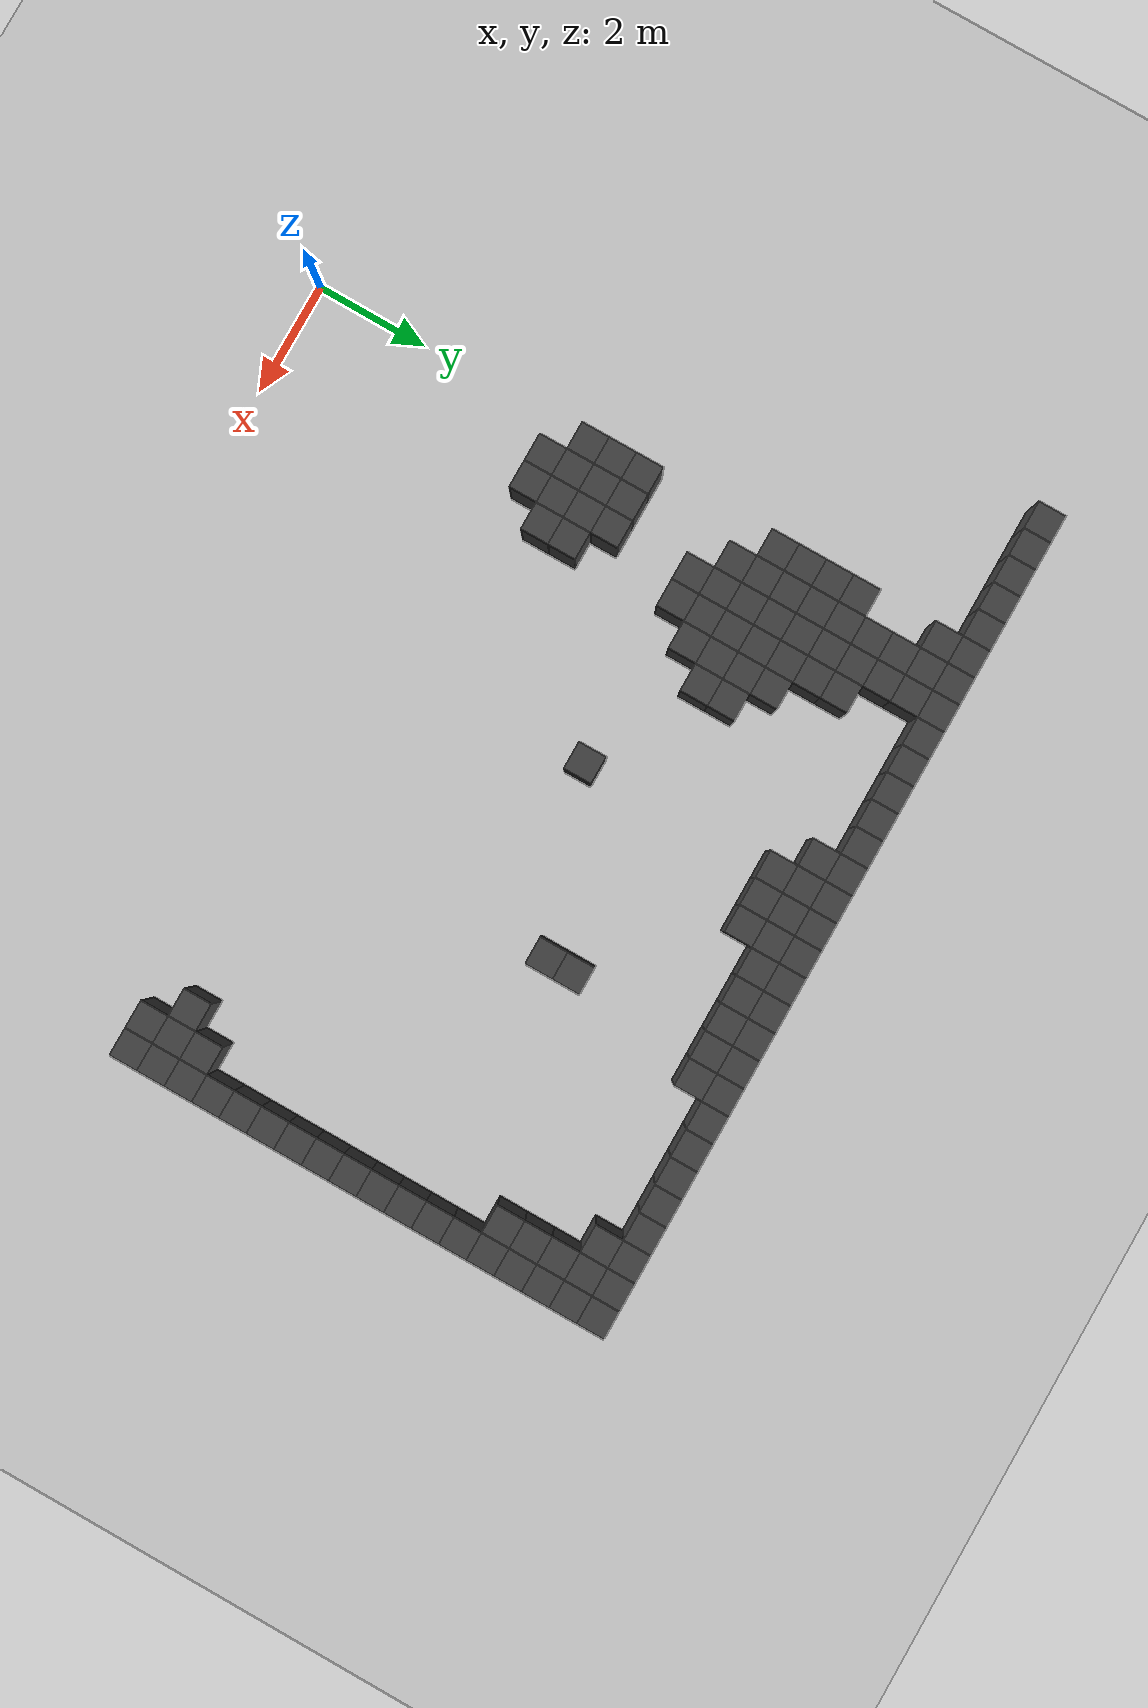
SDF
<sdf version="1.7">
 <world name="map_6610">
  <model name="ground_plane">
   <static>true</static>
   <link name="link">
    <collision name="collision">
     <geometry><plane><normal>0 0 1</normal><size>200 200</size></plane></geometry>
    </collision>
    <visual name="visual">
     <geometry><plane><normal>0 0 1</normal><size>200 200</size></plane></geometry>
     <material><ambient>0.8 0.8 0.8 1</ambient><diffuse>0.8 0.8 0.8 1</diffuse></material>
    </visual>
   </link>
  </model>
  <model name="maze_environment">
   <static>true</static>
   <link name="wall_20">
    <pose>-2.250 12.250 0.500 0 0 0</pose>
    <collision name="col"><geometry><box><size>0.5 0.5 1.0</size></box></geometry></collision>
    <visual name="vis">
     <geometry><box><size>0.5 0.5 1.0</size></box></geometry>
     <material><ambient>0.15 0.15 0.15 1</ambient><diffuse>0.25 0.25 0.25 1</diffuse></material>
    </visual>
   </link>
   <link name="wall_21">
    <pose>-1.750 12.250 0.500 0 0 0</pose>
    <collision name="col"><geometry><box><size>0.5 0.5 1.0</size></box></geometry></collision>
    <visual name="vis">
     <geometry><box><size>0.5 0.5 1.0</size></box></geometry>
     <material><ambient>0.15 0.15 0.15 1</ambient><diffuse>0.25 0.25 0.25 1</diffuse></material>
    </visual>
   </link>
   <link name="wall_22">
    <pose>-1.250 12.250 0.500 0 0 0</pose>
    <collision name="col"><geometry><box><size>0.5 0.5 1.0</size></box></geometry></collision>
    <visual name="vis">
     <geometry><box><size>0.5 0.5 1.0</size></box></geometry>
     <material><ambient>0.15 0.15 0.15 1</ambient><diffuse>0.25 0.25 0.25 1</diffuse></material>
    </visual>
   </link>
   <link name="wall_23">
    <pose>-0.750 12.250 0.500 0 0 0</pose>
    <collision name="col"><geometry><box><size>0.5 0.5 1.0</size></box></geometry></collision>
    <visual name="vis">
     <geometry><box><size>0.5 0.5 1.0</size></box></geometry>
     <material><ambient>0.15 0.15 0.15 1</ambient><diffuse>0.25 0.25 0.25 1</diffuse></material>
    </visual>
   </link>
   <link name="wall_24">
    <pose>-0.250 12.250 0.500 0 0 0</pose>
    <collision name="col"><geometry><box><size>0.5 0.5 1.0</size></box></geometry></collision>
    <visual name="vis">
     <geometry><box><size>0.5 0.5 1.0</size></box></geometry>
     <material><ambient>0.15 0.15 0.15 1</ambient><diffuse>0.25 0.25 0.25 1</diffuse></material>
    </visual>
   </link>
   <link name="wall_25">
    <pose>0.250 12.250 0.500 0 0 0</pose>
    <collision name="col"><geometry><box><size>0.5 0.5 1.0</size></box></geometry></collision>
    <visual name="vis">
     <geometry><box><size>0.5 0.5 1.0</size></box></geometry>
     <material><ambient>0.15 0.15 0.15 1</ambient><diffuse>0.25 0.25 0.25 1</diffuse></material>
    </visual>
   </link>
   <link name="wall_26">
    <pose>0.750 12.250 0.500 0 0 0</pose>
    <collision name="col"><geometry><box><size>0.5 0.5 1.0</size></box></geometry></collision>
    <visual name="vis">
     <geometry><box><size>0.5 0.5 1.0</size></box></geometry>
     <material><ambient>0.15 0.15 0.15 1</ambient><diffuse>0.25 0.25 0.25 1</diffuse></material>
    </visual>
   </link>
   <link name="wall_27">
    <pose>1.250 12.250 0.500 0 0 0</pose>
    <collision name="col"><geometry><box><size>0.5 0.5 1.0</size></box></geometry></collision>
    <visual name="vis">
     <geometry><box><size>0.5 0.5 1.0</size></box></geometry>
     <material><ambient>0.15 0.15 0.15 1</ambient><diffuse>0.25 0.25 0.25 1</diffuse></material>
    </visual>
   </link>
   <link name="wall_28">
    <pose>1.750 12.250 0.500 0 0 0</pose>
    <collision name="col"><geometry><box><size>0.5 0.5 1.0</size></box></geometry></collision>
    <visual name="vis">
     <geometry><box><size>0.5 0.5 1.0</size></box></geometry>
     <material><ambient>0.15 0.15 0.15 1</ambient><diffuse>0.25 0.25 0.25 1</diffuse></material>
    </visual>
   </link>
   <link name="wall_29">
    <pose>2.250 12.250 0.500 0 0 0</pose>
    <collision name="col"><geometry><box><size>0.5 0.5 1.0</size></box></geometry></collision>
    <visual name="vis">
     <geometry><box><size>0.5 0.5 1.0</size></box></geometry>
     <material><ambient>0.15 0.15 0.15 1</ambient><diffuse>0.25 0.25 0.25 1</diffuse></material>
    </visual>
   </link>
   <link name="wall_30">
    <pose>2.750 12.250 0.500 0 0 0</pose>
    <collision name="col"><geometry><box><size>0.5 0.5 1.0</size></box></geometry></collision>
    <visual name="vis">
     <geometry><box><size>0.5 0.5 1.0</size></box></geometry>
     <material><ambient>0.15 0.15 0.15 1</ambient><diffuse>0.25 0.25 0.25 1</diffuse></material>
    </visual>
   </link>
   <link name="wall_31">
    <pose>3.250 12.250 0.500 0 0 0</pose>
    <collision name="col"><geometry><box><size>0.5 0.5 1.0</size></box></geometry></collision>
    <visual name="vis">
     <geometry><box><size>0.5 0.5 1.0</size></box></geometry>
     <material><ambient>0.15 0.15 0.15 1</ambient><diffuse>0.25 0.25 0.25 1</diffuse></material>
    </visual>
   </link>
   <link name="wall_32">
    <pose>3.750 12.250 0.500 0 0 0</pose>
    <collision name="col"><geometry><box><size>0.5 0.5 1.0</size></box></geometry></collision>
    <visual name="vis">
     <geometry><box><size>0.5 0.5 1.0</size></box></geometry>
     <material><ambient>0.15 0.15 0.15 1</ambient><diffuse>0.25 0.25 0.25 1</diffuse></material>
    </visual>
   </link>
   <link name="wall_33">
    <pose>4.250 12.250 0.500 0 0 0</pose>
    <collision name="col"><geometry><box><size>0.5 0.5 1.0</size></box></geometry></collision>
    <visual name="vis">
     <geometry><box><size>0.5 0.5 1.0</size></box></geometry>
     <material><ambient>0.15 0.15 0.15 1</ambient><diffuse>0.25 0.25 0.25 1</diffuse></material>
    </visual>
   </link>
   <link name="wall_34">
    <pose>4.750 12.250 0.500 0 0 0</pose>
    <collision name="col"><geometry><box><size>0.5 0.5 1.0</size></box></geometry></collision>
    <visual name="vis">
     <geometry><box><size>0.5 0.5 1.0</size></box></geometry>
     <material><ambient>0.15 0.15 0.15 1</ambient><diffuse>0.25 0.25 0.25 1</diffuse></material>
    </visual>
   </link>
   <link name="wall_35">
    <pose>5.250 12.250 0.500 0 0 0</pose>
    <collision name="col"><geometry><box><size>0.5 0.5 1.0</size></box></geometry></collision>
    <visual name="vis">
     <geometry><box><size>0.5 0.5 1.0</size></box></geometry>
     <material><ambient>0.15 0.15 0.15 1</ambient><diffuse>0.25 0.25 0.25 1</diffuse></material>
    </visual>
   </link>
   <link name="wall_36">
    <pose>5.750 12.250 0.500 0 0 0</pose>
    <collision name="col"><geometry><box><size>0.5 0.5 1.0</size></box></geometry></collision>
    <visual name="vis">
     <geometry><box><size>0.5 0.5 1.0</size></box></geometry>
     <material><ambient>0.15 0.15 0.15 1</ambient><diffuse>0.25 0.25 0.25 1</diffuse></material>
    </visual>
   </link>
   <link name="wall_37">
    <pose>6.250 12.250 0.500 0 0 0</pose>
    <collision name="col"><geometry><box><size>0.5 0.5 1.0</size></box></geometry></collision>
    <visual name="vis">
     <geometry><box><size>0.5 0.5 1.0</size></box></geometry>
     <material><ambient>0.15 0.15 0.15 1</ambient><diffuse>0.25 0.25 0.25 1</diffuse></material>
    </visual>
   </link>
   <link name="wall_38">
    <pose>6.750 12.250 0.500 0 0 0</pose>
    <collision name="col"><geometry><box><size>0.5 0.5 1.0</size></box></geometry></collision>
    <visual name="vis">
     <geometry><box><size>0.5 0.5 1.0</size></box></geometry>
     <material><ambient>0.15 0.15 0.15 1</ambient><diffuse>0.25 0.25 0.25 1</diffuse></material>
    </visual>
   </link>
   <link name="wall_39">
    <pose>7.250 12.250 0.500 0 0 0</pose>
    <collision name="col"><geometry><box><size>0.5 0.5 1.0</size></box></geometry></collision>
    <visual name="vis">
     <geometry><box><size>0.5 0.5 1.0</size></box></geometry>
     <material><ambient>0.15 0.15 0.15 1</ambient><diffuse>0.25 0.25 0.25 1</diffuse></material>
    </visual>
   </link>
   <link name="wall_40">
    <pose>7.750 12.250 0.500 0 0 0</pose>
    <collision name="col"><geometry><box><size>0.5 0.5 1.0</size></box></geometry></collision>
    <visual name="vis">
     <geometry><box><size>0.5 0.5 1.0</size></box></geometry>
     <material><ambient>0.15 0.15 0.15 1</ambient><diffuse>0.25 0.25 0.25 1</diffuse></material>
    </visual>
   </link>
   <link name="wall_41">
    <pose>8.250 12.250 0.500 0 0 0</pose>
    <collision name="col"><geometry><box><size>0.5 0.5 1.0</size></box></geometry></collision>
    <visual name="vis">
     <geometry><box><size>0.5 0.5 1.0</size></box></geometry>
     <material><ambient>0.15 0.15 0.15 1</ambient><diffuse>0.25 0.25 0.25 1</diffuse></material>
    </visual>
   </link>
   <link name="wall_42">
    <pose>8.750 12.250 0.500 0 0 0</pose>
    <collision name="col"><geometry><box><size>0.5 0.5 1.0</size></box></geometry></collision>
    <visual name="vis">
     <geometry><box><size>0.5 0.5 1.0</size></box></geometry>
     <material><ambient>0.15 0.15 0.15 1</ambient><diffuse>0.25 0.25 0.25 1</diffuse></material>
    </visual>
   </link>
   <link name="wall_43">
    <pose>9.250 12.250 0.500 0 0 0</pose>
    <collision name="col"><geometry><box><size>0.5 0.5 1.0</size></box></geometry></collision>
    <visual name="vis">
     <geometry><box><size>0.5 0.5 1.0</size></box></geometry>
     <material><ambient>0.15 0.15 0.15 1</ambient><diffuse>0.25 0.25 0.25 1</diffuse></material>
    </visual>
   </link>
   <link name="wall_44">
    <pose>9.750 12.250 0.500 0 0 0</pose>
    <collision name="col"><geometry><box><size>0.5 0.5 1.0</size></box></geometry></collision>
    <visual name="vis">
     <geometry><box><size>0.5 0.5 1.0</size></box></geometry>
     <material><ambient>0.15 0.15 0.15 1</ambient><diffuse>0.25 0.25 0.25 1</diffuse></material>
    </visual>
   </link>
   <link name="wall_45">
    <pose>10.250 12.250 0.500 0 0 0</pose>
    <collision name="col"><geometry><box><size>0.5 0.5 1.0</size></box></geometry></collision>
    <visual name="vis">
     <geometry><box><size>0.5 0.5 1.0</size></box></geometry>
     <material><ambient>0.15 0.15 0.15 1</ambient><diffuse>0.25 0.25 0.25 1</diffuse></material>
    </visual>
   </link>
   <link name="wall_46">
    <pose>10.750 12.250 0.500 0 0 0</pose>
    <collision name="col"><geometry><box><size>0.5 0.5 1.0</size></box></geometry></collision>
    <visual name="vis">
     <geometry><box><size>0.5 0.5 1.0</size></box></geometry>
     <material><ambient>0.15 0.15 0.15 1</ambient><diffuse>0.25 0.25 0.25 1</diffuse></material>
    </visual>
   </link>
   <link name="wall_47">
    <pose>11.250 12.250 0.500 0 0 0</pose>
    <collision name="col"><geometry><box><size>0.5 0.5 1.0</size></box></geometry></collision>
    <visual name="vis">
     <geometry><box><size>0.5 0.5 1.0</size></box></geometry>
     <material><ambient>0.15 0.15 0.15 1</ambient><diffuse>0.25 0.25 0.25 1</diffuse></material>
    </visual>
   </link>
   <link name="wall_48">
    <pose>11.750 12.250 0.500 0 0 0</pose>
    <collision name="col"><geometry><box><size>0.5 0.5 1.0</size></box></geometry></collision>
    <visual name="vis">
     <geometry><box><size>0.5 0.5 1.0</size></box></geometry>
     <material><ambient>0.15 0.15 0.15 1</ambient><diffuse>0.25 0.25 0.25 1</diffuse></material>
    </visual>
   </link>
   <link name="wall_49">
    <pose>12.250 12.250 0.500 0 0 0</pose>
    <collision name="col"><geometry><box><size>0.5 0.5 1.0</size></box></geometry></collision>
    <visual name="vis">
     <geometry><box><size>0.5 0.5 1.0</size></box></geometry>
     <material><ambient>0.15 0.15 0.15 1</ambient><diffuse>0.25 0.25 0.25 1</diffuse></material>
    </visual>
   </link>
   <link name="wall_51">
    <pose>0.250 11.750 0.500 0 0 0</pose>
    <collision name="col"><geometry><box><size>0.5 0.5 1.0</size></box></geometry></collision>
    <visual name="vis">
     <geometry><box><size>0.5 0.5 1.0</size></box></geometry>
     <material><ambient>0.15 0.15 0.15 1</ambient><diffuse>0.25 0.25 0.25 1</diffuse></material>
    </visual>
   </link>
   <link name="wall_52">
    <pose>0.750 11.750 0.500 0 0 0</pose>
    <collision name="col"><geometry><box><size>0.5 0.5 1.0</size></box></geometry></collision>
    <visual name="vis">
     <geometry><box><size>0.5 0.5 1.0</size></box></geometry>
     <material><ambient>0.15 0.15 0.15 1</ambient><diffuse>0.25 0.25 0.25 1</diffuse></material>
    </visual>
   </link>
   <link name="wall_53">
    <pose>1.250 11.750 0.500 0 0 0</pose>
    <collision name="col"><geometry><box><size>0.5 0.5 1.0</size></box></geometry></collision>
    <visual name="vis">
     <geometry><box><size>0.5 0.5 1.0</size></box></geometry>
     <material><ambient>0.15 0.15 0.15 1</ambient><diffuse>0.25 0.25 0.25 1</diffuse></material>
    </visual>
   </link>
   <link name="wall_54">
    <pose>4.250 11.750 0.500 0 0 0</pose>
    <collision name="col"><geometry><box><size>0.5 0.5 1.0</size></box></geometry></collision>
    <visual name="vis">
     <geometry><box><size>0.5 0.5 1.0</size></box></geometry>
     <material><ambient>0.15 0.15 0.15 1</ambient><diffuse>0.25 0.25 0.25 1</diffuse></material>
    </visual>
   </link>
   <link name="wall_55">
    <pose>4.750 11.750 0.500 0 0 0</pose>
    <collision name="col"><geometry><box><size>0.5 0.5 1.0</size></box></geometry></collision>
    <visual name="vis">
     <geometry><box><size>0.5 0.5 1.0</size></box></geometry>
     <material><ambient>0.15 0.15 0.15 1</ambient><diffuse>0.25 0.25 0.25 1</diffuse></material>
    </visual>
   </link>
   <link name="wall_56">
    <pose>5.250 11.750 0.500 0 0 0</pose>
    <collision name="col"><geometry><box><size>0.5 0.5 1.0</size></box></geometry></collision>
    <visual name="vis">
     <geometry><box><size>0.5 0.5 1.0</size></box></geometry>
     <material><ambient>0.15 0.15 0.15 1</ambient><diffuse>0.25 0.25 0.25 1</diffuse></material>
    </visual>
   </link>
   <link name="wall_57">
    <pose>5.750 11.750 0.500 0 0 0</pose>
    <collision name="col"><geometry><box><size>0.5 0.5 1.0</size></box></geometry></collision>
    <visual name="vis">
     <geometry><box><size>0.5 0.5 1.0</size></box></geometry>
     <material><ambient>0.15 0.15 0.15 1</ambient><diffuse>0.25 0.25 0.25 1</diffuse></material>
    </visual>
   </link>
   <link name="wall_58">
    <pose>6.250 11.750 0.500 0 0 0</pose>
    <collision name="col"><geometry><box><size>0.5 0.5 1.0</size></box></geometry></collision>
    <visual name="vis">
     <geometry><box><size>0.5 0.5 1.0</size></box></geometry>
     <material><ambient>0.15 0.15 0.15 1</ambient><diffuse>0.25 0.25 0.25 1</diffuse></material>
    </visual>
   </link>
   <link name="wall_59">
    <pose>6.750 11.750 0.500 0 0 0</pose>
    <collision name="col"><geometry><box><size>0.5 0.5 1.0</size></box></geometry></collision>
    <visual name="vis">
     <geometry><box><size>0.5 0.5 1.0</size></box></geometry>
     <material><ambient>0.15 0.15 0.15 1</ambient><diffuse>0.25 0.25 0.25 1</diffuse></material>
    </visual>
   </link>
   <link name="wall_60">
    <pose>7.250 11.750 0.500 0 0 0</pose>
    <collision name="col"><geometry><box><size>0.5 0.5 1.0</size></box></geometry></collision>
    <visual name="vis">
     <geometry><box><size>0.5 0.5 1.0</size></box></geometry>
     <material><ambient>0.15 0.15 0.15 1</ambient><diffuse>0.25 0.25 0.25 1</diffuse></material>
    </visual>
   </link>
   <link name="wall_61">
    <pose>7.750 11.750 0.500 0 0 0</pose>
    <collision name="col"><geometry><box><size>0.5 0.5 1.0</size></box></geometry></collision>
    <visual name="vis">
     <geometry><box><size>0.5 0.5 1.0</size></box></geometry>
     <material><ambient>0.15 0.15 0.15 1</ambient><diffuse>0.25 0.25 0.25 1</diffuse></material>
    </visual>
   </link>
   <link name="wall_62">
    <pose>8.250 11.750 0.500 0 0 0</pose>
    <collision name="col"><geometry><box><size>0.5 0.5 1.0</size></box></geometry></collision>
    <visual name="vis">
     <geometry><box><size>0.5 0.5 1.0</size></box></geometry>
     <material><ambient>0.15 0.15 0.15 1</ambient><diffuse>0.25 0.25 0.25 1</diffuse></material>
    </visual>
   </link>
   <link name="wall_63">
    <pose>11.250 11.750 0.500 0 0 0</pose>
    <collision name="col"><geometry><box><size>0.5 0.5 1.0</size></box></geometry></collision>
    <visual name="vis">
     <geometry><box><size>0.5 0.5 1.0</size></box></geometry>
     <material><ambient>0.15 0.15 0.15 1</ambient><diffuse>0.25 0.25 0.25 1</diffuse></material>
    </visual>
   </link>
   <link name="wall_64">
    <pose>11.750 11.750 0.500 0 0 0</pose>
    <collision name="col"><geometry><box><size>0.5 0.5 1.0</size></box></geometry></collision>
    <visual name="vis">
     <geometry><box><size>0.5 0.5 1.0</size></box></geometry>
     <material><ambient>0.15 0.15 0.15 1</ambient><diffuse>0.25 0.25 0.25 1</diffuse></material>
    </visual>
   </link>
   <link name="wall_65">
    <pose>12.250 11.750 0.500 0 0 0</pose>
    <collision name="col"><geometry><box><size>0.5 0.5 1.0</size></box></geometry></collision>
    <visual name="vis">
     <geometry><box><size>0.5 0.5 1.0</size></box></geometry>
     <material><ambient>0.15 0.15 0.15 1</ambient><diffuse>0.25 0.25 0.25 1</diffuse></material>
    </visual>
   </link>
   <link name="wall_67">
    <pose>0.750 11.250 0.500 0 0 0</pose>
    <collision name="col"><geometry><box><size>0.5 0.5 1.0</size></box></geometry></collision>
    <visual name="vis">
     <geometry><box><size>0.5 0.5 1.0</size></box></geometry>
     <material><ambient>0.15 0.15 0.15 1</ambient><diffuse>0.25 0.25 0.25 1</diffuse></material>
    </visual>
   </link>
   <link name="wall_68">
    <pose>1.250 11.250 0.500 0 0 0</pose>
    <collision name="col"><geometry><box><size>0.5 0.5 1.0</size></box></geometry></collision>
    <visual name="vis">
     <geometry><box><size>0.5 0.5 1.0</size></box></geometry>
     <material><ambient>0.15 0.15 0.15 1</ambient><diffuse>0.25 0.25 0.25 1</diffuse></material>
    </visual>
   </link>
   <link name="wall_69">
    <pose>4.750 11.250 0.500 0 0 0</pose>
    <collision name="col"><geometry><box><size>0.5 0.5 1.0</size></box></geometry></collision>
    <visual name="vis">
     <geometry><box><size>0.5 0.5 1.0</size></box></geometry>
     <material><ambient>0.15 0.15 0.15 1</ambient><diffuse>0.25 0.25 0.25 1</diffuse></material>
    </visual>
   </link>
   <link name="wall_70">
    <pose>5.250 11.250 0.500 0 0 0</pose>
    <collision name="col"><geometry><box><size>0.5 0.5 1.0</size></box></geometry></collision>
    <visual name="vis">
     <geometry><box><size>0.5 0.5 1.0</size></box></geometry>
     <material><ambient>0.15 0.15 0.15 1</ambient><diffuse>0.25 0.25 0.25 1</diffuse></material>
    </visual>
   </link>
   <link name="wall_71">
    <pose>5.750 11.250 0.500 0 0 0</pose>
    <collision name="col"><geometry><box><size>0.5 0.5 1.0</size></box></geometry></collision>
    <visual name="vis">
     <geometry><box><size>0.5 0.5 1.0</size></box></geometry>
     <material><ambient>0.15 0.15 0.15 1</ambient><diffuse>0.25 0.25 0.25 1</diffuse></material>
    </visual>
   </link>
   <link name="wall_72">
    <pose>11.750 11.250 0.500 0 0 0</pose>
    <collision name="col"><geometry><box><size>0.5 0.5 1.0</size></box></geometry></collision>
    <visual name="vis">
     <geometry><box><size>0.5 0.5 1.0</size></box></geometry>
     <material><ambient>0.15 0.15 0.15 1</ambient><diffuse>0.25 0.25 0.25 1</diffuse></material>
    </visual>
   </link>
   <link name="wall_73">
    <pose>12.250 11.250 0.500 0 0 0</pose>
    <collision name="col"><geometry><box><size>0.5 0.5 1.0</size></box></geometry></collision>
    <visual name="vis">
     <geometry><box><size>0.5 0.5 1.0</size></box></geometry>
     <material><ambient>0.15 0.15 0.15 1</ambient><diffuse>0.25 0.25 0.25 1</diffuse></material>
    </visual>
   </link>
   <link name="wall_75">
    <pose>0.750 10.750 0.500 0 0 0</pose>
    <collision name="col"><geometry><box><size>0.5 0.5 1.0</size></box></geometry></collision>
    <visual name="vis">
     <geometry><box><size>0.5 0.5 1.0</size></box></geometry>
     <material><ambient>0.15 0.15 0.15 1</ambient><diffuse>0.25 0.25 0.25 1</diffuse></material>
    </visual>
   </link>
   <link name="wall_76">
    <pose>1.250 10.750 0.500 0 0 0</pose>
    <collision name="col"><geometry><box><size>0.5 0.5 1.0</size></box></geometry></collision>
    <visual name="vis">
     <geometry><box><size>0.5 0.5 1.0</size></box></geometry>
     <material><ambient>0.15 0.15 0.15 1</ambient><diffuse>0.25 0.25 0.25 1</diffuse></material>
    </visual>
   </link>
   <link name="wall_77">
    <pose>1.750 10.750 0.500 0 0 0</pose>
    <collision name="col"><geometry><box><size>0.5 0.5 1.0</size></box></geometry></collision>
    <visual name="vis">
     <geometry><box><size>0.5 0.5 1.0</size></box></geometry>
     <material><ambient>0.15 0.15 0.15 1</ambient><diffuse>0.25 0.25 0.25 1</diffuse></material>
    </visual>
   </link>
   <link name="wall_78">
    <pose>11.750 10.750 0.500 0 0 0</pose>
    <collision name="col"><geometry><box><size>0.5 0.5 1.0</size></box></geometry></collision>
    <visual name="vis">
     <geometry><box><size>0.5 0.5 1.0</size></box></geometry>
     <material><ambient>0.15 0.15 0.15 1</ambient><diffuse>0.25 0.25 0.25 1</diffuse></material>
    </visual>
   </link>
   <link name="wall_79">
    <pose>12.250 10.750 0.500 0 0 0</pose>
    <collision name="col"><geometry><box><size>0.5 0.5 1.0</size></box></geometry></collision>
    <visual name="vis">
     <geometry><box><size>0.5 0.5 1.0</size></box></geometry>
     <material><ambient>0.15 0.15 0.15 1</ambient><diffuse>0.25 0.25 0.25 1</diffuse></material>
    </visual>
   </link>
   <link name="wall_81">
    <pose>0.250 10.250 0.500 0 0 0</pose>
    <collision name="col"><geometry><box><size>0.5 0.5 1.0</size></box></geometry></collision>
    <visual name="vis">
     <geometry><box><size>0.5 0.5 1.0</size></box></geometry>
     <material><ambient>0.15 0.15 0.15 1</ambient><diffuse>0.25 0.25 0.25 1</diffuse></material>
    </visual>
   </link>
   <link name="wall_82">
    <pose>0.750 10.250 0.500 0 0 0</pose>
    <collision name="col"><geometry><box><size>0.5 0.5 1.0</size></box></geometry></collision>
    <visual name="vis">
     <geometry><box><size>0.5 0.5 1.0</size></box></geometry>
     <material><ambient>0.15 0.15 0.15 1</ambient><diffuse>0.25 0.25 0.25 1</diffuse></material>
    </visual>
   </link>
   <link name="wall_83">
    <pose>1.250 10.250 0.500 0 0 0</pose>
    <collision name="col"><geometry><box><size>0.5 0.5 1.0</size></box></geometry></collision>
    <visual name="vis">
     <geometry><box><size>0.5 0.5 1.0</size></box></geometry>
     <material><ambient>0.15 0.15 0.15 1</ambient><diffuse>0.25 0.25 0.25 1</diffuse></material>
    </visual>
   </link>
   <link name="wall_84">
    <pose>1.750 10.250 0.500 0 0 0</pose>
    <collision name="col"><geometry><box><size>0.5 0.5 1.0</size></box></geometry></collision>
    <visual name="vis">
     <geometry><box><size>0.5 0.5 1.0</size></box></geometry>
     <material><ambient>0.15 0.15 0.15 1</ambient><diffuse>0.25 0.25 0.25 1</diffuse></material>
    </visual>
   </link>
   <link name="wall_85">
    <pose>11.750 10.250 0.500 0 0 0</pose>
    <collision name="col"><geometry><box><size>0.5 0.5 1.0</size></box></geometry></collision>
    <visual name="vis">
     <geometry><box><size>0.5 0.5 1.0</size></box></geometry>
     <material><ambient>0.15 0.15 0.15 1</ambient><diffuse>0.25 0.25 0.25 1</diffuse></material>
    </visual>
   </link>
   <link name="wall_86">
    <pose>12.250 10.250 0.500 0 0 0</pose>
    <collision name="col"><geometry><box><size>0.5 0.5 1.0</size></box></geometry></collision>
    <visual name="vis">
     <geometry><box><size>0.5 0.5 1.0</size></box></geometry>
     <material><ambient>0.15 0.15 0.15 1</ambient><diffuse>0.25 0.25 0.25 1</diffuse></material>
    </visual>
   </link>
   <link name="wall_88">
    <pose>0.250 9.750 0.500 0 0 0</pose>
    <collision name="col"><geometry><box><size>0.5 0.5 1.0</size></box></geometry></collision>
    <visual name="vis">
     <geometry><box><size>0.5 0.5 1.0</size></box></geometry>
     <material><ambient>0.15 0.15 0.15 1</ambient><diffuse>0.25 0.25 0.25 1</diffuse></material>
    </visual>
   </link>
   <link name="wall_89">
    <pose>0.750 9.750 0.500 0 0 0</pose>
    <collision name="col"><geometry><box><size>0.5 0.5 1.0</size></box></geometry></collision>
    <visual name="vis">
     <geometry><box><size>0.5 0.5 1.0</size></box></geometry>
     <material><ambient>0.15 0.15 0.15 1</ambient><diffuse>0.25 0.25 0.25 1</diffuse></material>
    </visual>
   </link>
   <link name="wall_90">
    <pose>1.250 9.750 0.500 0 0 0</pose>
    <collision name="col"><geometry><box><size>0.5 0.5 1.0</size></box></geometry></collision>
    <visual name="vis">
     <geometry><box><size>0.5 0.5 1.0</size></box></geometry>
     <material><ambient>0.15 0.15 0.15 1</ambient><diffuse>0.25 0.25 0.25 1</diffuse></material>
    </visual>
   </link>
   <link name="wall_91">
    <pose>1.750 9.750 0.500 0 0 0</pose>
    <collision name="col"><geometry><box><size>0.5 0.5 1.0</size></box></geometry></collision>
    <visual name="vis">
     <geometry><box><size>0.5 0.5 1.0</size></box></geometry>
     <material><ambient>0.15 0.15 0.15 1</ambient><diffuse>0.25 0.25 0.25 1</diffuse></material>
    </visual>
   </link>
   <link name="wall_92">
    <pose>2.250 9.750 0.500 0 0 0</pose>
    <collision name="col"><geometry><box><size>0.5 0.5 1.0</size></box></geometry></collision>
    <visual name="vis">
     <geometry><box><size>0.5 0.5 1.0</size></box></geometry>
     <material><ambient>0.15 0.15 0.15 1</ambient><diffuse>0.25 0.25 0.25 1</diffuse></material>
    </visual>
   </link>
   <link name="wall_93">
    <pose>12.250 9.750 0.500 0 0 0</pose>
    <collision name="col"><geometry><box><size>0.5 0.5 1.0</size></box></geometry></collision>
    <visual name="vis">
     <geometry><box><size>0.5 0.5 1.0</size></box></geometry>
     <material><ambient>0.15 0.15 0.15 1</ambient><diffuse>0.25 0.25 0.25 1</diffuse></material>
    </visual>
   </link>
   <link name="wall_95">
    <pose>0.250 9.250 0.500 0 0 0</pose>
    <collision name="col"><geometry><box><size>0.5 0.5 1.0</size></box></geometry></collision>
    <visual name="vis">
     <geometry><box><size>0.5 0.5 1.0</size></box></geometry>
     <material><ambient>0.15 0.15 0.15 1</ambient><diffuse>0.25 0.25 0.25 1</diffuse></material>
    </visual>
   </link>
   <link name="wall_96">
    <pose>0.750 9.250 0.500 0 0 0</pose>
    <collision name="col"><geometry><box><size>0.5 0.5 1.0</size></box></geometry></collision>
    <visual name="vis">
     <geometry><box><size>0.5 0.5 1.0</size></box></geometry>
     <material><ambient>0.15 0.15 0.15 1</ambient><diffuse>0.25 0.25 0.25 1</diffuse></material>
    </visual>
   </link>
   <link name="wall_97">
    <pose>1.250 9.250 0.500 0 0 0</pose>
    <collision name="col"><geometry><box><size>0.5 0.5 1.0</size></box></geometry></collision>
    <visual name="vis">
     <geometry><box><size>0.5 0.5 1.0</size></box></geometry>
     <material><ambient>0.15 0.15 0.15 1</ambient><diffuse>0.25 0.25 0.25 1</diffuse></material>
    </visual>
   </link>
   <link name="wall_98">
    <pose>1.750 9.250 0.500 0 0 0</pose>
    <collision name="col"><geometry><box><size>0.5 0.5 1.0</size></box></geometry></collision>
    <visual name="vis">
     <geometry><box><size>0.5 0.5 1.0</size></box></geometry>
     <material><ambient>0.15 0.15 0.15 1</ambient><diffuse>0.25 0.25 0.25 1</diffuse></material>
    </visual>
   </link>
   <link name="wall_99">
    <pose>2.250 9.250 0.500 0 0 0</pose>
    <collision name="col"><geometry><box><size>0.5 0.5 1.0</size></box></geometry></collision>
    <visual name="vis">
     <geometry><box><size>0.5 0.5 1.0</size></box></geometry>
     <material><ambient>0.15 0.15 0.15 1</ambient><diffuse>0.25 0.25 0.25 1</diffuse></material>
    </visual>
   </link>
   <link name="wall_100">
    <pose>2.750 9.250 0.500 0 0 0</pose>
    <collision name="col"><geometry><box><size>0.5 0.5 1.0</size></box></geometry></collision>
    <visual name="vis">
     <geometry><box><size>0.5 0.5 1.0</size></box></geometry>
     <material><ambient>0.15 0.15 0.15 1</ambient><diffuse>0.25 0.25 0.25 1</diffuse></material>
    </visual>
   </link>
   <link name="wall_101">
    <pose>7.750 9.250 0.500 0 0 0</pose>
    <collision name="col"><geometry><box><size>0.5 0.5 1.0</size></box></geometry></collision>
    <visual name="vis">
     <geometry><box><size>0.5 0.5 1.0</size></box></geometry>
     <material><ambient>0.15 0.15 0.15 1</ambient><diffuse>0.25 0.25 0.25 1</diffuse></material>
    </visual>
   </link>
   <link name="wall_102">
    <pose>12.250 9.250 0.500 0 0 0</pose>
    <collision name="col"><geometry><box><size>0.5 0.5 1.0</size></box></geometry></collision>
    <visual name="vis">
     <geometry><box><size>0.5 0.5 1.0</size></box></geometry>
     <material><ambient>0.15 0.15 0.15 1</ambient><diffuse>0.25 0.25 0.25 1</diffuse></material>
    </visual>
   </link>
   <link name="wall_104">
    <pose>0.250 8.750 0.500 0 0 0</pose>
    <collision name="col"><geometry><box><size>0.5 0.5 1.0</size></box></geometry></collision>
    <visual name="vis">
     <geometry><box><size>0.5 0.5 1.0</size></box></geometry>
     <material><ambient>0.15 0.15 0.15 1</ambient><diffuse>0.25 0.25 0.25 1</diffuse></material>
    </visual>
   </link>
   <link name="wall_105">
    <pose>0.750 8.750 0.500 0 0 0</pose>
    <collision name="col"><geometry><box><size>0.5 0.5 1.0</size></box></geometry></collision>
    <visual name="vis">
     <geometry><box><size>0.5 0.5 1.0</size></box></geometry>
     <material><ambient>0.15 0.15 0.15 1</ambient><diffuse>0.25 0.25 0.25 1</diffuse></material>
    </visual>
   </link>
   <link name="wall_106">
    <pose>1.250 8.750 0.500 0 0 0</pose>
    <collision name="col"><geometry><box><size>0.5 0.5 1.0</size></box></geometry></collision>
    <visual name="vis">
     <geometry><box><size>0.5 0.5 1.0</size></box></geometry>
     <material><ambient>0.15 0.15 0.15 1</ambient><diffuse>0.25 0.25 0.25 1</diffuse></material>
    </visual>
   </link>
   <link name="wall_107">
    <pose>1.750 8.750 0.500 0 0 0</pose>
    <collision name="col"><geometry><box><size>0.5 0.5 1.0</size></box></geometry></collision>
    <visual name="vis">
     <geometry><box><size>0.5 0.5 1.0</size></box></geometry>
     <material><ambient>0.15 0.15 0.15 1</ambient><diffuse>0.25 0.25 0.25 1</diffuse></material>
    </visual>
   </link>
   <link name="wall_108">
    <pose>2.250 8.750 0.500 0 0 0</pose>
    <collision name="col"><geometry><box><size>0.5 0.5 1.0</size></box></geometry></collision>
    <visual name="vis">
     <geometry><box><size>0.5 0.5 1.0</size></box></geometry>
     <material><ambient>0.15 0.15 0.15 1</ambient><diffuse>0.25 0.25 0.25 1</diffuse></material>
    </visual>
   </link>
   <link name="wall_109">
    <pose>2.750 8.750 0.500 0 0 0</pose>
    <collision name="col"><geometry><box><size>0.5 0.5 1.0</size></box></geometry></collision>
    <visual name="vis">
     <geometry><box><size>0.5 0.5 1.0</size></box></geometry>
     <material><ambient>0.15 0.15 0.15 1</ambient><diffuse>0.25 0.25 0.25 1</diffuse></material>
    </visual>
   </link>
   <link name="wall_110">
    <pose>7.750 8.750 0.500 0 0 0</pose>
    <collision name="col"><geometry><box><size>0.5 0.5 1.0</size></box></geometry></collision>
    <visual name="vis">
     <geometry><box><size>0.5 0.5 1.0</size></box></geometry>
     <material><ambient>0.15 0.15 0.15 1</ambient><diffuse>0.25 0.25 0.25 1</diffuse></material>
    </visual>
   </link>
   <link name="wall_111">
    <pose>12.250 8.750 0.500 0 0 0</pose>
    <collision name="col"><geometry><box><size>0.5 0.5 1.0</size></box></geometry></collision>
    <visual name="vis">
     <geometry><box><size>0.5 0.5 1.0</size></box></geometry>
     <material><ambient>0.15 0.15 0.15 1</ambient><diffuse>0.25 0.25 0.25 1</diffuse></material>
    </visual>
   </link>
   <link name="wall_113">
    <pose>0.750 8.250 0.500 0 0 0</pose>
    <collision name="col"><geometry><box><size>0.5 0.5 1.0</size></box></geometry></collision>
    <visual name="vis">
     <geometry><box><size>0.5 0.5 1.0</size></box></geometry>
     <material><ambient>0.15 0.15 0.15 1</ambient><diffuse>0.25 0.25 0.25 1</diffuse></material>
    </visual>
   </link>
   <link name="wall_114">
    <pose>1.250 8.250 0.500 0 0 0</pose>
    <collision name="col"><geometry><box><size>0.5 0.5 1.0</size></box></geometry></collision>
    <visual name="vis">
     <geometry><box><size>0.5 0.5 1.0</size></box></geometry>
     <material><ambient>0.15 0.15 0.15 1</ambient><diffuse>0.25 0.25 0.25 1</diffuse></material>
    </visual>
   </link>
   <link name="wall_115">
    <pose>1.750 8.250 0.500 0 0 0</pose>
    <collision name="col"><geometry><box><size>0.5 0.5 1.0</size></box></geometry></collision>
    <visual name="vis">
     <geometry><box><size>0.5 0.5 1.0</size></box></geometry>
     <material><ambient>0.15 0.15 0.15 1</ambient><diffuse>0.25 0.25 0.25 1</diffuse></material>
    </visual>
   </link>
   <link name="wall_116">
    <pose>2.250 8.250 0.500 0 0 0</pose>
    <collision name="col"><geometry><box><size>0.5 0.5 1.0</size></box></geometry></collision>
    <visual name="vis">
     <geometry><box><size>0.5 0.5 1.0</size></box></geometry>
     <material><ambient>0.15 0.15 0.15 1</ambient><diffuse>0.25 0.25 0.25 1</diffuse></material>
    </visual>
   </link>
   <link name="wall_117">
    <pose>12.250 8.250 0.500 0 0 0</pose>
    <collision name="col"><geometry><box><size>0.5 0.5 1.0</size></box></geometry></collision>
    <visual name="vis">
     <geometry><box><size>0.5 0.5 1.0</size></box></geometry>
     <material><ambient>0.15 0.15 0.15 1</ambient><diffuse>0.25 0.25 0.25 1</diffuse></material>
    </visual>
   </link>
   <link name="wall_119">
    <pose>1.250 7.750 0.500 0 0 0</pose>
    <collision name="col"><geometry><box><size>0.5 0.5 1.0</size></box></geometry></collision>
    <visual name="vis">
     <geometry><box><size>0.5 0.5 1.0</size></box></geometry>
     <material><ambient>0.15 0.15 0.15 1</ambient><diffuse>0.25 0.25 0.25 1</diffuse></material>
    </visual>
   </link>
   <link name="wall_120">
    <pose>1.750 7.750 0.500 0 0 0</pose>
    <collision name="col"><geometry><box><size>0.5 0.5 1.0</size></box></geometry></collision>
    <visual name="vis">
     <geometry><box><size>0.5 0.5 1.0</size></box></geometry>
     <material><ambient>0.15 0.15 0.15 1</ambient><diffuse>0.25 0.25 0.25 1</diffuse></material>
    </visual>
   </link>
   <link name="wall_121">
    <pose>4.750 7.750 0.500 0 0 0</pose>
    <collision name="col"><geometry><box><size>0.5 0.5 1.0</size></box></geometry></collision>
    <visual name="vis">
     <geometry><box><size>0.5 0.5 1.0</size></box></geometry>
     <material><ambient>0.15 0.15 0.15 1</ambient><diffuse>0.25 0.25 0.25 1</diffuse></material>
    </visual>
   </link>
   <link name="wall_122">
    <pose>12.250 7.750 0.500 0 0 0</pose>
    <collision name="col"><geometry><box><size>0.5 0.5 1.0</size></box></geometry></collision>
    <visual name="vis">
     <geometry><box><size>0.5 0.5 1.0</size></box></geometry>
     <material><ambient>0.15 0.15 0.15 1</ambient><diffuse>0.25 0.25 0.25 1</diffuse></material>
    </visual>
   </link>
   <link name="wall_124">
    <pose>12.250 7.250 0.500 0 0 0</pose>
    <collision name="col"><geometry><box><size>0.5 0.5 1.0</size></box></geometry></collision>
    <visual name="vis">
     <geometry><box><size>0.5 0.5 1.0</size></box></geometry>
     <material><ambient>0.15 0.15 0.15 1</ambient><diffuse>0.25 0.25 0.25 1</diffuse></material>
    </visual>
   </link>
   <link name="wall_131">
    <pose>12.250 6.750 0.500 0 0 0</pose>
    <collision name="col"><geometry><box><size>0.5 0.5 1.0</size></box></geometry></collision>
    <visual name="vis">
     <geometry><box><size>0.5 0.5 1.0</size></box></geometry>
     <material><ambient>0.15 0.15 0.15 1</ambient><diffuse>0.25 0.25 0.25 1</diffuse></material>
    </visual>
   </link>
   <link name="wall_142">
    <pose>0.250 6.250 0.500 0 0 0</pose>
    <collision name="col"><geometry><box><size>0.5 0.5 1.0</size></box></geometry></collision>
    <visual name="vis">
     <geometry><box><size>0.5 0.5 1.0</size></box></geometry>
     <material><ambient>0.15 0.15 0.15 1</ambient><diffuse>0.25 0.25 0.25 1</diffuse></material>
    </visual>
   </link>
   <link name="wall_143">
    <pose>0.750 6.250 0.500 0 0 0</pose>
    <collision name="col"><geometry><box><size>0.5 0.5 1.0</size></box></geometry></collision>
    <visual name="vis">
     <geometry><box><size>0.5 0.5 1.0</size></box></geometry>
     <material><ambient>0.15 0.15 0.15 1</ambient><diffuse>0.25 0.25 0.25 1</diffuse></material>
    </visual>
   </link>
   <link name="wall_144">
    <pose>1.250 6.250 0.500 0 0 0</pose>
    <collision name="col"><geometry><box><size>0.5 0.5 1.0</size></box></geometry></collision>
    <visual name="vis">
     <geometry><box><size>0.5 0.5 1.0</size></box></geometry>
     <material><ambient>0.15 0.15 0.15 1</ambient><diffuse>0.25 0.25 0.25 1</diffuse></material>
    </visual>
   </link>
   <link name="wall_145">
    <pose>12.250 6.250 0.500 0 0 0</pose>
    <collision name="col"><geometry><box><size>0.5 0.5 1.0</size></box></geometry></collision>
    <visual name="vis">
     <geometry><box><size>0.5 0.5 1.0</size></box></geometry>
     <material><ambient>0.15 0.15 0.15 1</ambient><diffuse>0.25 0.25 0.25 1</diffuse></material>
    </visual>
   </link>
   <link name="wall_158">
    <pose>0.250 5.750 0.500 0 0 0</pose>
    <collision name="col"><geometry><box><size>0.5 0.5 1.0</size></box></geometry></collision>
    <visual name="vis">
     <geometry><box><size>0.5 0.5 1.0</size></box></geometry>
     <material><ambient>0.15 0.15 0.15 1</ambient><diffuse>0.25 0.25 0.25 1</diffuse></material>
    </visual>
   </link>
   <link name="wall_159">
    <pose>0.750 5.750 0.500 0 0 0</pose>
    <collision name="col"><geometry><box><size>0.5 0.5 1.0</size></box></geometry></collision>
    <visual name="vis">
     <geometry><box><size>0.5 0.5 1.0</size></box></geometry>
     <material><ambient>0.15 0.15 0.15 1</ambient><diffuse>0.25 0.25 0.25 1</diffuse></material>
    </visual>
   </link>
   <link name="wall_160">
    <pose>1.250 5.750 0.500 0 0 0</pose>
    <collision name="col"><geometry><box><size>0.5 0.5 1.0</size></box></geometry></collision>
    <visual name="vis">
     <geometry><box><size>0.5 0.5 1.0</size></box></geometry>
     <material><ambient>0.15 0.15 0.15 1</ambient><diffuse>0.25 0.25 0.25 1</diffuse></material>
    </visual>
   </link>
   <link name="wall_161">
    <pose>1.750 5.750 0.500 0 0 0</pose>
    <collision name="col"><geometry><box><size>0.5 0.5 1.0</size></box></geometry></collision>
    <visual name="vis">
     <geometry><box><size>0.5 0.5 1.0</size></box></geometry>
     <material><ambient>0.15 0.15 0.15 1</ambient><diffuse>0.25 0.25 0.25 1</diffuse></material>
    </visual>
   </link>
   <link name="wall_162">
    <pose>12.250 5.750 0.500 0 0 0</pose>
    <collision name="col"><geometry><box><size>0.5 0.5 1.0</size></box></geometry></collision>
    <visual name="vis">
     <geometry><box><size>0.5 0.5 1.0</size></box></geometry>
     <material><ambient>0.15 0.15 0.15 1</ambient><diffuse>0.25 0.25 0.25 1</diffuse></material>
    </visual>
   </link>
   <link name="wall_174">
    <pose>0.250 5.250 0.500 0 0 0</pose>
    <collision name="col"><geometry><box><size>0.5 0.5 1.0</size></box></geometry></collision>
    <visual name="vis">
     <geometry><box><size>0.5 0.5 1.0</size></box></geometry>
     <material><ambient>0.15 0.15 0.15 1</ambient><diffuse>0.25 0.25 0.25 1</diffuse></material>
    </visual>
   </link>
   <link name="wall_175">
    <pose>0.750 5.250 0.500 0 0 0</pose>
    <collision name="col"><geometry><box><size>0.5 0.5 1.0</size></box></geometry></collision>
    <visual name="vis">
     <geometry><box><size>0.5 0.5 1.0</size></box></geometry>
     <material><ambient>0.15 0.15 0.15 1</ambient><diffuse>0.25 0.25 0.25 1</diffuse></material>
    </visual>
   </link>
   <link name="wall_176">
    <pose>1.250 5.250 0.500 0 0 0</pose>
    <collision name="col"><geometry><box><size>0.5 0.5 1.0</size></box></geometry></collision>
    <visual name="vis">
     <geometry><box><size>0.5 0.5 1.0</size></box></geometry>
     <material><ambient>0.15 0.15 0.15 1</ambient><diffuse>0.25 0.25 0.25 1</diffuse></material>
    </visual>
   </link>
   <link name="wall_177">
    <pose>1.750 5.250 0.500 0 0 0</pose>
    <collision name="col"><geometry><box><size>0.5 0.5 1.0</size></box></geometry></collision>
    <visual name="vis">
     <geometry><box><size>0.5 0.5 1.0</size></box></geometry>
     <material><ambient>0.15 0.15 0.15 1</ambient><diffuse>0.25 0.25 0.25 1</diffuse></material>
    </visual>
   </link>
   <link name="wall_178">
    <pose>12.250 5.250 0.500 0 0 0</pose>
    <collision name="col"><geometry><box><size>0.5 0.5 1.0</size></box></geometry></collision>
    <visual name="vis">
     <geometry><box><size>0.5 0.5 1.0</size></box></geometry>
     <material><ambient>0.15 0.15 0.15 1</ambient><diffuse>0.25 0.25 0.25 1</diffuse></material>
    </visual>
   </link>
   <link name="wall_184">
    <pose>0.750 4.750 0.500 0 0 0</pose>
    <collision name="col"><geometry><box><size>0.5 0.5 1.0</size></box></geometry></collision>
    <visual name="vis">
     <geometry><box><size>0.5 0.5 1.0</size></box></geometry>
     <material><ambient>0.15 0.15 0.15 1</ambient><diffuse>0.25 0.25 0.25 1</diffuse></material>
    </visual>
   </link>
   <link name="wall_185">
    <pose>1.250 4.750 0.500 0 0 0</pose>
    <collision name="col"><geometry><box><size>0.5 0.5 1.0</size></box></geometry></collision>
    <visual name="vis">
     <geometry><box><size>0.5 0.5 1.0</size></box></geometry>
     <material><ambient>0.15 0.15 0.15 1</ambient><diffuse>0.25 0.25 0.25 1</diffuse></material>
    </visual>
   </link>
   <link name="wall_186">
    <pose>11.750 4.750 0.500 0 0 0</pose>
    <collision name="col"><geometry><box><size>0.5 0.5 1.0</size></box></geometry></collision>
    <visual name="vis">
     <geometry><box><size>0.5 0.5 1.0</size></box></geometry>
     <material><ambient>0.15 0.15 0.15 1</ambient><diffuse>0.25 0.25 0.25 1</diffuse></material>
    </visual>
   </link>
   <link name="wall_187">
    <pose>12.250 4.750 0.500 0 0 0</pose>
    <collision name="col"><geometry><box><size>0.5 0.5 1.0</size></box></geometry></collision>
    <visual name="vis">
     <geometry><box><size>0.5 0.5 1.0</size></box></geometry>
     <material><ambient>0.15 0.15 0.15 1</ambient><diffuse>0.25 0.25 0.25 1</diffuse></material>
    </visual>
   </link>
   <link name="wall_190">
    <pose>11.250 4.250 0.500 0 0 0</pose>
    <collision name="col"><geometry><box><size>0.5 0.5 1.0</size></box></geometry></collision>
    <visual name="vis">
     <geometry><box><size>0.5 0.5 1.0</size></box></geometry>
     <material><ambient>0.15 0.15 0.15 1</ambient><diffuse>0.25 0.25 0.25 1</diffuse></material>
    </visual>
   </link>
   <link name="wall_191">
    <pose>11.750 4.250 0.500 0 0 0</pose>
    <collision name="col"><geometry><box><size>0.5 0.5 1.0</size></box></geometry></collision>
    <visual name="vis">
     <geometry><box><size>0.5 0.5 1.0</size></box></geometry>
     <material><ambient>0.15 0.15 0.15 1</ambient><diffuse>0.25 0.25 0.25 1</diffuse></material>
    </visual>
   </link>
   <link name="wall_192">
    <pose>12.250 4.250 0.500 0 0 0</pose>
    <collision name="col"><geometry><box><size>0.5 0.5 1.0</size></box></geometry></collision>
    <visual name="vis">
     <geometry><box><size>0.5 0.5 1.0</size></box></geometry>
     <material><ambient>0.15 0.15 0.15 1</ambient><diffuse>0.25 0.25 0.25 1</diffuse></material>
    </visual>
   </link>
   <link name="wall_200">
    <pose>11.750 3.750 0.500 0 0 0</pose>
    <collision name="col"><geometry><box><size>0.5 0.5 1.0</size></box></geometry></collision>
    <visual name="vis">
     <geometry><box><size>0.5 0.5 1.0</size></box></geometry>
     <material><ambient>0.15 0.15 0.15 1</ambient><diffuse>0.25 0.25 0.25 1</diffuse></material>
    </visual>
   </link>
   <link name="wall_201">
    <pose>12.250 3.750 0.500 0 0 0</pose>
    <collision name="col"><geometry><box><size>0.5 0.5 1.0</size></box></geometry></collision>
    <visual name="vis">
     <geometry><box><size>0.5 0.5 1.0</size></box></geometry>
     <material><ambient>0.15 0.15 0.15 1</ambient><diffuse>0.25 0.25 0.25 1</diffuse></material>
    </visual>
   </link>
  </model>
 </world>
</sdf>
